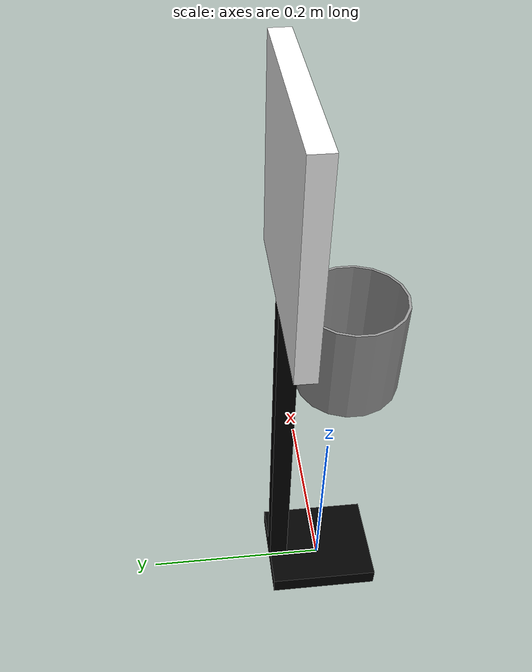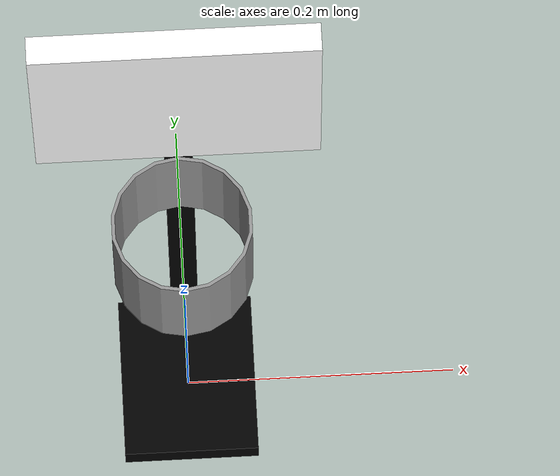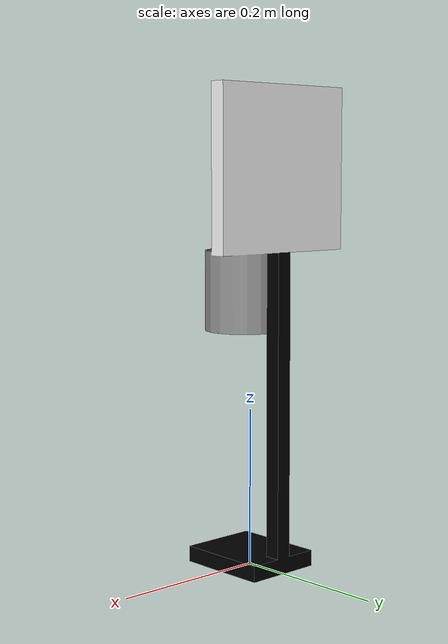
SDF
<?xml version="1.0" ?>
<sdf version="1.4">
  <model name="basket">
     <static>true</static>
    <link name="link">
      <collision name="collision">
        <geometry>
          <mesh>
            <uri>model://basket/basket.DAE</uri>
          </mesh>
        </geometry>
      </collision>
      <visual name="visual">
        <geometry>
          <mesh>
            <uri>model://basket/basket.DAE</uri>
          </mesh>
        </geometry>
      </visual>
    </link>
  </model>
</sdf>
